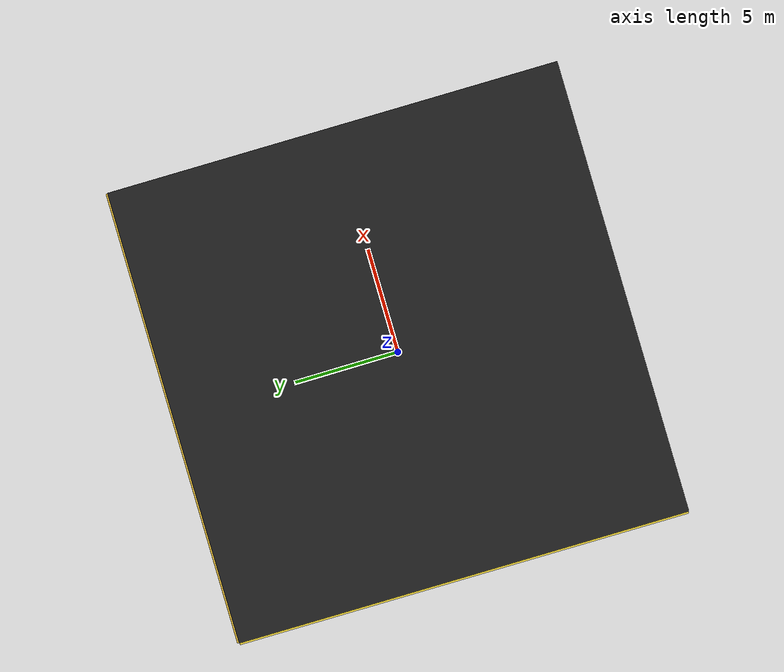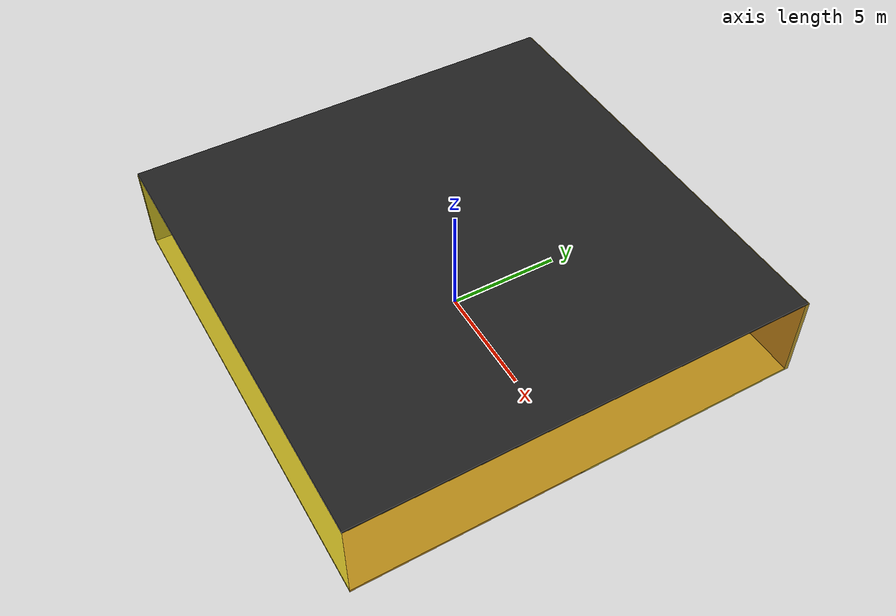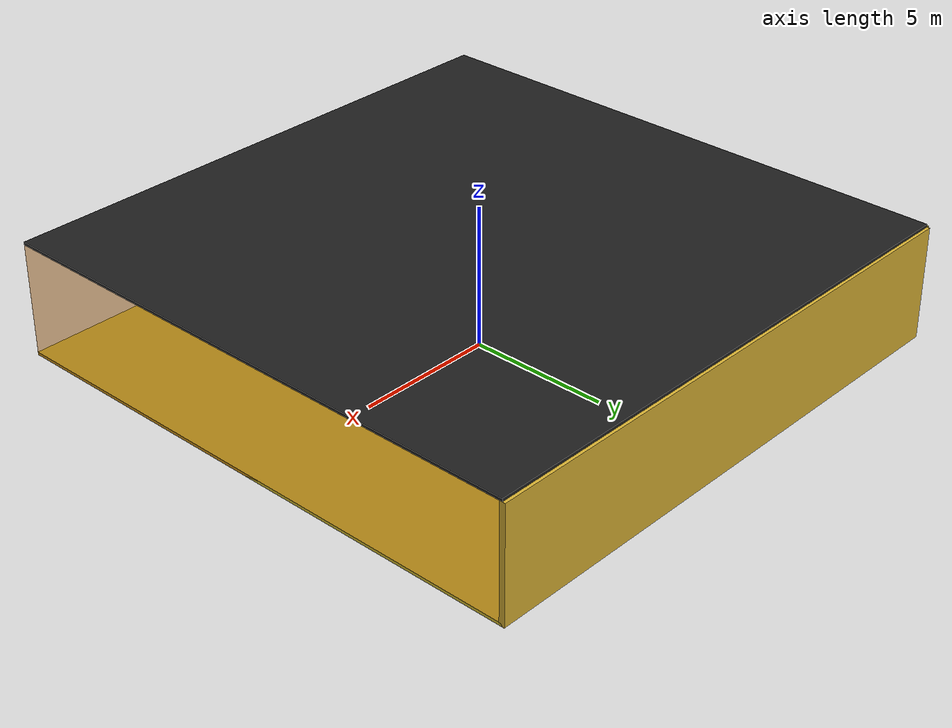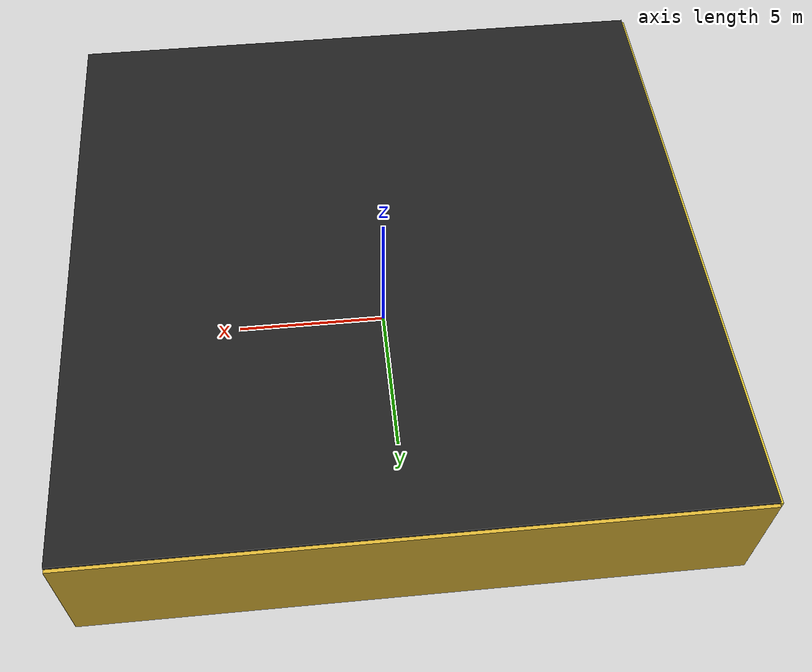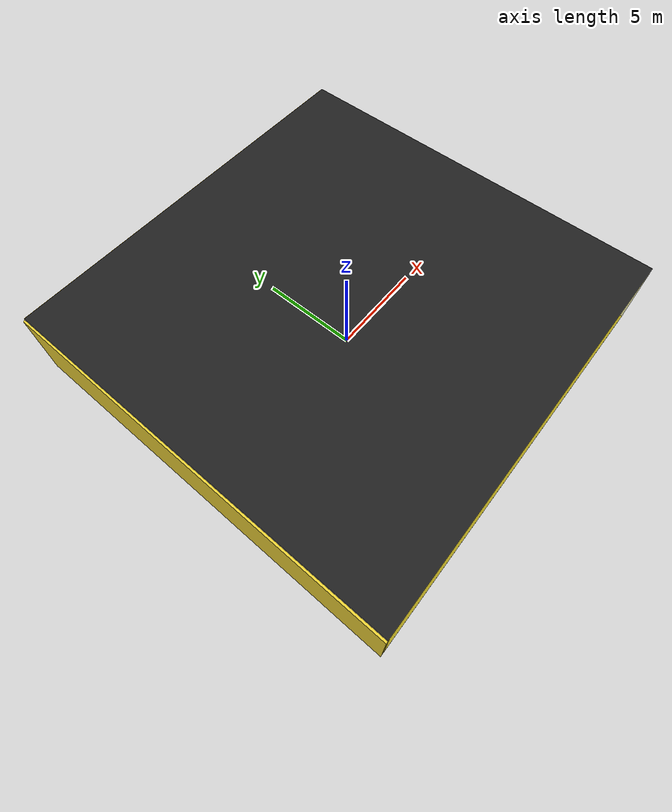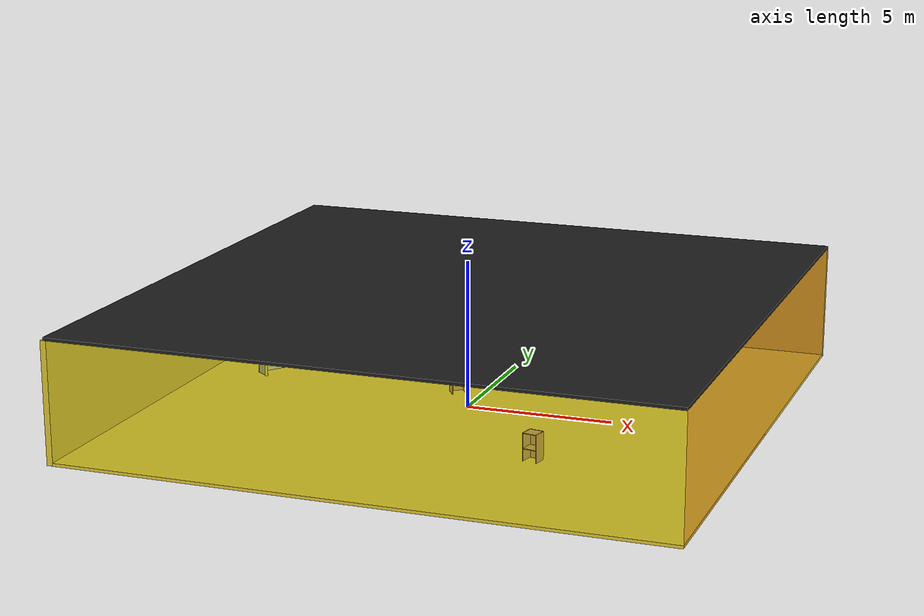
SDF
<sdf version="1.4">
 <world name="default">
  <physics type="ode">
   <max_step_size>0.001</max_step_size>
   <real_time_factor>1</real_time_factor>
   <real_time_update_rate>1000</real_time_update_rate>
   <gravity>0 0 -9.8</gravity>
  </physics>
  <scene><ambient>0.4 0.4 0.4 1</ambient><background>0.7 0.7 0.7 1</background><shadows>1</shadows></scene>
  <model name="Surrounding">
   <static>1</static>
   <link name="Ceiling">
    <collision name="Ceiling_Collision"><geometry><box><size>20 20 0.1</size></box></geometry></collision>
    <visual name="Ceiling_Visual">
     <geometry><box><size>20 20 0.1</size></box></geometry>
     <material>
      <script><uri>file://media/materials/scripts/gazebo.material</uri><name>Gazebo/FlatBlack</name></script>
     </material>
    </visual>
    <pose>0 0 4.05 0 0 0</pose>
   </link>
   <link name="Wall_South">
    <collision name="Wall_South_Collision">
     <geometry><box><size>20 0 4</size></box></geometry>
     <pose>0 0 2 0 -0 0</pose>
    </collision>
    <visual name="Wall_South_Visual">
     <pose>0 0 2 0 -0 0</pose>
     <geometry><box><size>20 0 4</size></box></geometry>
     <material>
      <script>
       <uri>file://media/materials/scripts/gazebo.material</uri>
       <name>Gazebo/YellowTransparent</name>
      </script>
     </material>
    </visual>
    <velocity_decay><linear>0</linear><angular>0</angular></velocity_decay>
    <pose>0 -10 0 0 -0 0</pose>
   </link>
   <link name="Wall_East">
    <collision name="Wall_21_Collision">
     <geometry><box><size>20 0 4</size></box></geometry>
     <pose>0 0 2 0 -0 0</pose>
    </collision>
    <visual name="Wall_21_Visual">
     <pose>0 0 2 0 -0 0</pose>
     <geometry><box><size>20 0 4</size></box></geometry>
     <material>
      <script>
       <uri>file://media/materials/scripts/gazebo.material</uri>
       <name>Gazebo/OrangeTransparent</name>
      </script>
     </material>
    </visual>
    <velocity_decay><linear>0</linear><angular>0</angular></velocity_decay>
    <pose>10 0 0 0 -0 1.5708</pose>
   </link>
   <link name="Wall_North">
    <collision name="Wall_22_Collision">
     <geometry><box><size>20 0.2 4</size></box></geometry>
     <pose>0 0 2 0 -0 0</pose>
    </collision>
    <visual name="Wall_22_Visual">
     <pose>0 0 2 0 -0 0</pose>
     <geometry><box><size>20 0.2 4</size></box></geometry>
     <material>
      <script><uri>file://media/materials/scripts/gazebo.material</uri><name>Gazebo/Gold</name></script>
     </material>
    </visual>
    <velocity_decay><linear>0</linear><angular>0</angular></velocity_decay>
    <pose>0 10 0 0 -0 0</pose>
   </link>
   <link name="Wall_West">
    <collision name="Wall_23_Collision">
     <geometry><box><size>20 0.2 4</size></box></geometry>
     <pose>0 0 2 0 -0 0</pose>
    </collision>
    <visual name="Wall_23_Visual">
     <pose>0 0 2 0 -0 0</pose>
     <geometry><box><size>20 0.2 4</size></box></geometry>
     <material>
      <script><uri>file://media/materials/scripts/gazebo.material</uri><name>Gazebo/ZincYellow</name></script>
     </material>
    </visual>
    <velocity_decay><linear>0</linear><angular>0</angular></velocity_decay>
    <pose>-10 0 0 0 0 -1.5708</pose>
   </link>
   <link name="Ground_link">
    <collision name="collision">
     <pose>0 0 .05 0 -0 0</pose>
     <geometry><box><size>20 20 0.1</size></box></geometry>
    </collision>
    <visual name="visual">
     <pose>0 0 .05 0 -0 0</pose>
     <geometry><box><size>20 20 0.1</size></box></geometry>
     <material>
      <script><uri>file://media/materials/scripts/gazebo.material</uri><name>Gazebo/ZincYellow</name></script>
     </material>
    </visual>
   </link>
   <static>1</static>
  </model>
  <spherical_coordinates>
   <surface_model>EARTH_WGS84</surface_model>
   <latitude_deg>0</latitude_deg>
   <longitude_deg>0</longitude_deg>
   <elevation>0</elevation>
   <heading_deg>0</heading_deg>
  </spherical_coordinates>
  <light name="lightball_0" type="diffuse">
   <diffuse>0.8 0.8 0.8 1</diffuse>
   <specular>0.2 0.2 0.2 1</specular>
   <attenuation>
    <range>100</range>
    <constant>0.7</constant>
    <linear>0.01</linear>
    <quadratic>0.001</quadratic>
   </attenuation>
   <direction>-0.5 0.1 -0.9</direction>
   <pose>-9.64348606144 -8.58396540178 1.42556679091 0 0 0</pose>
  </light>
  <light name="lightball_1" type="diffuse">
   <diffuse>0.8 0.8 0.8 1</diffuse>
   <specular>0.2 0.2 0.2 1</specular>
   <attenuation>
    <range>100</range>
    <constant>0.7</constant>
    <linear>0.01</linear>
    <quadratic>0.001</quadratic>
   </attenuation>
   <direction>-0.5 0.1 -0.9</direction>
   <pose>8.05539442989 -7.17558778396 0.550788255866 0 0 0</pose>
  </light>
  <light name="lightball_2" type="diffuse">
   <diffuse>0.8 0.8 0.8 1</diffuse>
   <specular>0.2 0.2 0.2 1</specular>
   <attenuation>
    <range>100</range>
    <constant>0.7</constant>
    <linear>0.01</linear>
    <quadratic>0.001</quadratic>
   </attenuation>
   <direction>-0.5 0.1 -0.9</direction>
   <pose>-7.96166733958 -5.43016774476 1.30775609766 0 0 0</pose>
  </light>
  <light name="lightball_3" type="diffuse">
   <diffuse>0.8 0.8 0.8 1</diffuse>
   <specular>0.2 0.2 0.2 1</specular>
   <attenuation>
    <range>100</range>
    <constant>0.7</constant>
    <linear>0.01</linear>
    <quadratic>0.001</quadratic>
   </attenuation>
   <direction>-0.5 0.1 -0.9</direction>
   <pose>0.570379206889 5.34850333299 3.7126551079 0 0 0</pose>
  </light>
  <light name="lightball_4" type="diffuse">
   <diffuse>0.8 0.8 0.8 1</diffuse>
   <specular>0.2 0.2 0.2 1</specular>
   <attenuation>
    <range>100</range>
    <constant>0.7</constant>
    <linear>0.01</linear>
    <quadratic>0.001</quadratic>
   </attenuation>
   <direction>-0.5 0.1 -0.9</direction>
   <pose>2.12625435985 -3.20092269777 3.61684543505 0 0 0</pose>
  </light>
  <light name="lightball_5" type="diffuse">
   <diffuse>0.8 0.8 0.8 1</diffuse>
   <specular>0.2 0.2 0.2 1</specular>
   <attenuation>
    <range>100</range>
    <constant>0.7</constant>
    <linear>0.01</linear>
    <quadratic>0.001</quadratic>
   </attenuation>
   <direction>-0.5 0.1 -0.9</direction>
   <pose>0.406816988239 -5.35439861964 2.75151332338 0 0 0</pose>
  </light>
  <light name="lightball_6" type="diffuse">
   <diffuse>0.8 0.8 0.8 1</diffuse>
   <specular>0.2 0.2 0.2 1</specular>
   <attenuation>
    <range>100</range>
    <constant>0.7</constant>
    <linear>0.01</linear>
    <quadratic>0.001</quadratic>
   </attenuation>
   <direction>-0.5 0.1 -0.9</direction>
   <pose>-5.84589356995 -4.09420647118 3.62725637624 0 0 0</pose>
  </light>
  <light name="lightball_7" type="diffuse">
   <diffuse>0.8 0.8 0.8 1</diffuse>
   <specular>0.2 0.2 0.2 1</specular>
   <attenuation>
    <range>100</range>
    <constant>0.7</constant>
    <linear>0.01</linear>
    <quadratic>0.001</quadratic>
   </attenuation>
   <direction>-0.5 0.1 -0.9</direction>
   <pose>-0.260861223063 -3.8787554013 2.62916965408 0 0 0</pose>
  </light>
  <light name="lightball_8" type="diffuse">
   <diffuse>0.8 0.8 0.8 1</diffuse>
   <specular>0.2 0.2 0.2 1</specular>
   <attenuation>
    <range>100</range>
    <constant>0.7</constant>
    <linear>0.01</linear>
    <quadratic>0.001</quadratic>
   </attenuation>
   <direction>-0.5 0.1 -0.9</direction>
   <pose>-6.23424781211 9.56063654156 3.6018349222 0 0 0</pose>
  </light>
  <include>
   <uri>model://robocup_3Dsim_goal</uri>
   <pose>-7.06993857051 1.46021479939 0 0 0 2.48445983631</pose>
  </include>
  <include><uri>model://cabinet</uri><pose>-0.759877443224 1.13040297153 0 0 0 2.16367199618</pose></include>
  <include><uri>model://cabinet</uri><pose>3.84893058043 -4.67135859334 0 0 0 1.36372406887</pose></include>
 </world>
</sdf>

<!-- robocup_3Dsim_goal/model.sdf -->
<sdf version="1.5">
  <model name="robocup_3d_goal">
    <static>true</static>
    <link name="left_post">
      <pose>0 1.05 0.45 0 0 0</pose>
      <collision name="collision">
        <geometry>
          <cylinder>
            <radius>0.05</radius>
            <length>0.9</length>
          </cylinder>
        </geometry>
      </collision>
      <visual name="visual">
        <geometry>
          <cylinder>
            <radius>0.05</radius>
            <length>0.9</length>
          </cylinder>
        </geometry>
        <material>
          <script>
            <uri>file://media/materials/scripts/gazebo.material</uri>
            <name>Gazebo/ZincYellow</name>
          </script>
        </material>
      </visual>
    </link>
    <link name="left_support_horiz_lower">
      <pose>0.30 1.05 0.01 0 0 0</pose>
      <collision name="collision">
        <geometry>
          <box>
            <size>0.50 0.02 0.02</size>
          </box>
        </geometry>
      </collision>
      <visual name="visual">
        <geometry>
          <box>
            <size>0.50 0.02 0.02</size>
          </box>
        </geometry>
        <material>
          <script>
            <uri>file://media/materials/scripts/gazebo.material</uri>
            <name>Gazebo/White</name>
          </script>
        </material>
      </visual>
    </link>
    <link name="left_support_horiz_upper">
      <pose>0.30 1.05 0.79 0 0 0</pose>
      <collision name="collision">
        <geometry>
          <box>
            <size>0.50 0.02 0.02</size>
          </box>
        </geometry>
      </collision>
      <visual name="visual">
        <geometry>
          <box>
            <size>0.50 0.02 0.02</size>
          </box>
        </geometry>
        <material>
          <script>
            <uri>file://media/materials/scripts/gazebo.material</uri>
            <name>Gazebo/White</name>
          </script>
        </material>
      </visual>
    </link>
    <link name="left_support_vertical">
      <pose>0.56 1.05 0.4 0 1.5708 0</pose>
      <collision name="collision">
        <geometry>
          <box>
            <size>0.80 0.02 0.02</size>
          </box>
        </geometry>
      </collision>
      <visual name="visual">
        <geometry>
          <box>
            <size>0.80 0.02 0.02</size>
          </box>
        </geometry>
        <material>
          <script>
            <uri>file://media/materials/scripts/gazebo.material</uri>
            <name>Gazebo/White</name>
          </script>
        </material>
      </visual>
    </link>
    <link name="right_support_horiz_lower">
      <pose>0.30 -1.05 0.01 0 0 0</pose>
      <collision name="collision">
        <geometry>
          <box>
            <size>0.50 0.02 0.02</size>
          </box>
        </geometry>
      </collision>
      <visual name="visual">
        <geometry>
          <box>
            <size>0.50 0.02 0.02</size>
          </box>
        </geometry>
        <material>
          <script>
            <uri>file://media/materials/scripts/gazebo.material</uri>
            <name>Gazebo/White</name>
          </script>
        </material>
      </visual>
    </link>
    <link name="right_support_horiz_upper">
      <pose>0.30 -1.05 0.79 0 0 0</pose>
      <collision name="collision">
        <geometry>
          <box>
            <size>0.50 0.02 0.02</size>
          </box>
        </geometry>
      </collision>
      <visual name="visual">
        <geometry>
          <box>
            <size>0.50 0.02 0.02</size>
          </box>
        </geometry>
        <material>
          <script>
            <uri>file://media/materials/scripts/gazebo.material</uri>
            <name>Gazebo/White</name>
          </script>
        </material>
      </visual>
    </link>
    <link name="right_support_vertical">
      <pose>0.56 -1.05 0.4 0 1.5708 0</pose>
      <collision name="collision">
        <geometry>
          <box>
            <size>0.80 0.02 0.02</size>
          </box>
        </geometry>
      </collision>
      <visual name="visual">
        <geometry>
          <box>
            <size>0.80 0.02 0.02</size>
          </box>
        </geometry>
        <material>
          <script>
            <uri>file://media/materials/scripts/gazebo.material</uri>
            <name>Gazebo/White</name>
          </script>
        </material>
      </visual>
    </link>
    <link name="center_support_horiz_lower">
      <pose>0.56 0 0.01 0 1.5708 0</pose>
      <collision name="collision">
        <geometry>
          <box>
            <size>0.02 2.08 0.02</size>
          </box>
        </geometry>
      </collision>
      <visual name="visual">
        <geometry>
          <box>
            <size>0.02 2.08 0.02</size>
          </box>
        </geometry>
        <material>
          <script>
            <uri>file://media/materials/scripts/gazebo.material</uri>
            <name>Gazebo/White</name>
          </script>
        </material>
      </visual>
    </link>
    <link name="center_support_horiz_upper">
      <pose>0.56 0 0.79 0 1.5708 0</pose>
      <collision name="collision">
        <geometry>
          <box>
            <size>0.02 2.08 0.02</size>
          </box>
        </geometry>
      </collision>
      <visual name="visual">
        <geometry>
          <box>
            <size>0.02 2.08 0.02</size>
          </box>
        </geometry>
        <material>
          <script>
            <uri>file://media/materials/scripts/gazebo.material</uri>
            <name>Gazebo/White</name>
          </script>
        </material>
      </visual>
    </link>
    <link name="right_post">
      <pose>0 -1.05 0.45 0 0 0</pose>
      <collision name="collision">
        <geometry>
          <cylinder>
            <radius>0.05</radius>
            <length>0.9</length>
          </cylinder>
        </geometry>
      </collision>
      <visual name="visual">
        <geometry>
          <cylinder>
            <radius>0.05</radius>
            <length>0.9</length>
          </cylinder>
        </geometry>
        <material>
          <script>
            <uri>file://media/materials/scripts/gazebo.material</uri>
            <name>Gazebo/ZincYellow</name>
          </script>
        </material>
      </visual>
    </link>
    <link name="crossbar">
      <pose>0 0 0.85 1.57 1.57 0</pose>
      <collision name="collision">
        <geometry>
          <cylinder>
            <radius>0.05</radius>
            <length>2.0</length>
          </cylinder>
        </geometry>
      </collision>
      <visual name="visual">
        <geometry>
          <cylinder>
            <radius>0.05</radius>
            <length>2.0</length>
          </cylinder>
        </geometry>
        <material>
          <script>
            <uri>file://media/materials/scripts/gazebo.material</uri>
            <name>Gazebo/ZincYellow</name>
          </script>
        </material>
      </visual>
    </link>
    <link name="center_net">
      <pose>0.56 0 0.40 0 0 0</pose>
      <collision name="collision">
        <geometry>
          <box>
            <size>0.01 2.1 0.80</size>
          </box>
        </geometry>
      </collision>
      <visual name="visual">
        <geometry>
          <box>
            <size>0.01 2.1 0.80</size>
          </box>
        </geometry>
        <material>
          <script>
            <uri>model://../model_source/models/robocup09_spl_field/materials/scripts/</uri>
            <uri>model://../model_source/models/robocup09_spl_field/materials/textures/</uri>
            <name>RoboCup/Net</name>
          </script>
        </material>
      </visual>
    </link>
    <link name="left_net">
      <pose>0.30 1.05 0.40 0 0 0</pose>
      <collision name="collision">
        <geometry>
          <box>
            <size>0.50 0.01 0.76</size>
          </box>
        </geometry>
      </collision>
      <visual name="visual">
        <geometry>
          <box>
            <size>0.50 0.01 0.76</size>
          </box>
        </geometry>
        <material>
          <script>
            <uri>model://../model_source/models/robocup09_spl_field/materials/scripts/</uri>
            <uri>model://../model_source/models/robocup09_spl_field/materials/textures/</uri>
            <name>RoboCup/Net</name>
          </script>
        </material>
      </visual>
    </link>
    <link name="right_net">
      <pose>0.30 -1.05 0.40 0 0 0</pose>
      <collision name="collision">
        <geometry>
          <box>
            <size>0.50 0.01 0.76</size>
          </box>
        </geometry>
      </collision>
      <visual name="visual">
        <geometry>
          <box>
            <size>0.50 0.01 0.76</size>
          </box>
        </geometry>
        <material>
          <script>
            <uri>model://../model_source/models/robocup09_spl_field/materials/scripts/</uri>
            <uri>model://../model_source/models/robocup09_spl_field/materials/textures/</uri>
            <name>RoboCup/Net</name>
          </script>
        </material>
      </visual>
    </link>
  </model>
</sdf>

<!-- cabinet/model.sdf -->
<sdf version="1.5">
  <model name="cabinet">
    <static>true</static>
    <link name="cabinet_bottom_plate">
      <inertial>
        <pose>0 0 -1 0 0 0</pose>
        <inertia>
          <ixx>2.050000</ixx>
          <ixy>0</ixy>
          <ixz>0</ixz>
          <iyy>2.050000</iyy>
          <iyz>0</iyz>
          <izz>2.050000</izz>
        </inertia>
        <mass>25.000000</mass>
      </inertial>
      <collision name="cabinet_bottom_plate_geom">
        <pose>0 0 0.010000 0 0 0</pose>
        <geometry>
          <box>
            <size>0.450000 0.450000 0.020000</size>
          </box>
        </geometry>
      </collision>
      <visual name="cabinet_bottom_plate_geom_visual">
        <pose>0 0 0.010000 0 0 0</pose>
        <geometry>
          <box>
            <size>0.450000 0.450000 0.020000</size>
          </box>
        </geometry>
        <material>
          <script>
            <uri>model://media/materials/scripts/gazebo.material</uri>
            <name>Gazebo/Wood</name>
          </script>
        </material>
      </visual>
      <collision name="cabinet_bottom_plate_geom_cabinet_back_plate">
        <pose>0.235000 0 0.510000 0 0 0</pose>
        <geometry>
          <box>
            <size>0.020000 0.450000 1.020000</size>
          </box>
        </geometry>
      </collision>
      <visual name="cabinet_bottom_plate_geom_cabinet_back_plate_visual">
        <pose>0.235000 0 0.510000 0 0 0</pose>
        <geometry>
          <box>
            <size>0.020000 0.450000 1.020000</size>
          </box>
        </geometry>
        <material>
          <script>
            <uri>model://media/materials/scripts/gazebo.material</uri>
            <name>Gazebo/Wood</name>
          </script>
        </material>
      </visual>
      <collision name="cabinet_bottom_plate_geom_cabinet_left_plate">
        <pose>0 0.235000 0.510000 0 0 0</pose>
        <geometry>
          <box>
            <size>0.450000 0.020000 1.020000</size>
          </box>
        </geometry>
      </collision>
      <visual name="cabinet_bottom_plate_geom_cabinet_left_plate_visual">
        <pose>0 0.235000 0.510000 0 0 0</pose>
        <geometry>
          <box>
            <size>0.450000 0.020000 1.020000</size>
          </box>
        </geometry>
        <material>
          <script>
            <uri>model://media/materials/scripts/gazebo.material</uri>
            <name>Gazebo/Wood</name>
          </script>
        </material>
      </visual>
      <collision name="cabinet_bottom_plate_geom_cabinet_middle_plate">
        <pose>0 0 0.510000 0 0 0</pose>
        <geometry>
          <box>
            <size>0.450000 0.450000 0.020000</size>
          </box>
        </geometry>
      </collision>
      <visual name="cabinet_bottom_plate_geom_cabinet_middle_plate_visual">
        <pose>0 0 0.510000 0 0 0</pose>
        <geometry>
          <box>
            <size>0.450000 0.450000 0.020000</size>
          </box>
        </geometry>
        <material>
          <script>
            <uri>model://media/materials/scripts/gazebo.material</uri>
            <name>Gazebo/Wood</name>
          </script>
        </material>
      </visual>
      <collision name="cabinet_bottom_plate_geom_cabinet_right_plate">
        <pose>0 -0.235000 0.510000 0 0 0</pose>
        <geometry>
          <box>
            <size>0.450000 0.020000 1.020000</size>
          </box>
        </geometry>
      </collision>
      <visual name="cabinet_bottom_plate_geom_cabinet_right_plate_visual">
        <pose>0 -0.235000 0.510000 0 0 0</pose>
        <geometry>
          <box>
            <size>0.450000 0.020000 1.020000</size>
          </box>
        </geometry>
        <material>
          <script>
            <uri>model://media/materials/scripts/gazebo.material</uri>
            <name>Gazebo/Wood</name>
          </script>
        </material>
      </visual>
      <collision name="cabinet_bottom_plate_geom_cabinet_top_plate">
        <pose>0 0 1.010000 0 0 0</pose>
        <geometry>
          <box>
            <size>0.450000 0.450000 0.020000</size>
          </box>
        </geometry>
      </collision>
      <visual name="cabinet_bottom_plate_geom_cabinet_top_plate_visual">
        <pose>0 0 1.010000 0 0 0</pose>
        <geometry>
          <box>
            <size>0.450000 0.450000 0.020000</size>
          </box>
        </geometry>
        <material>
          <script>
            <uri>model://media/materials/scripts/gazebo.material</uri>
            <name>Gazebo/Wood</name>
          </script>
        </material>
      </visual>
    </link>
  </model>
</sdf>
